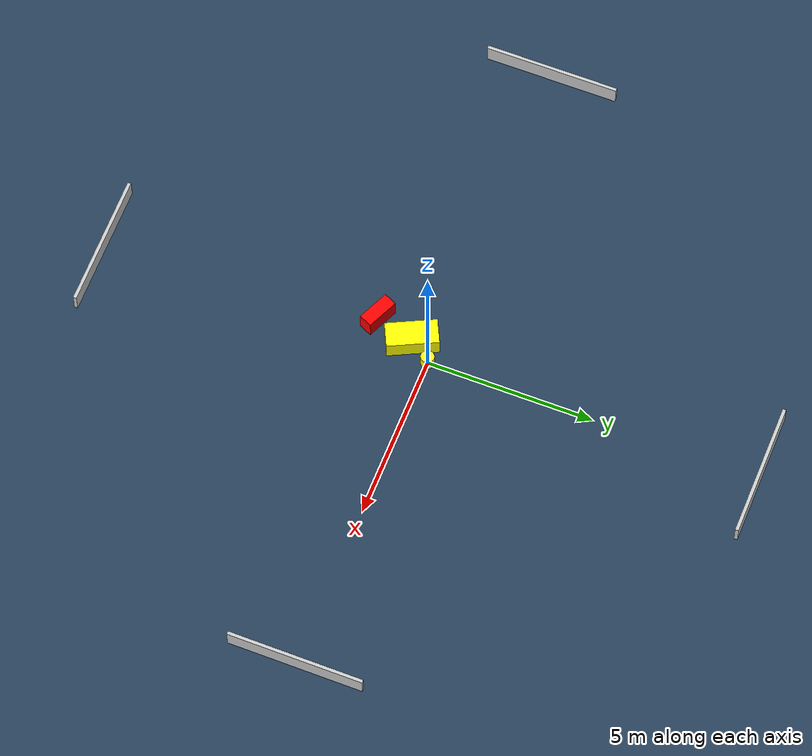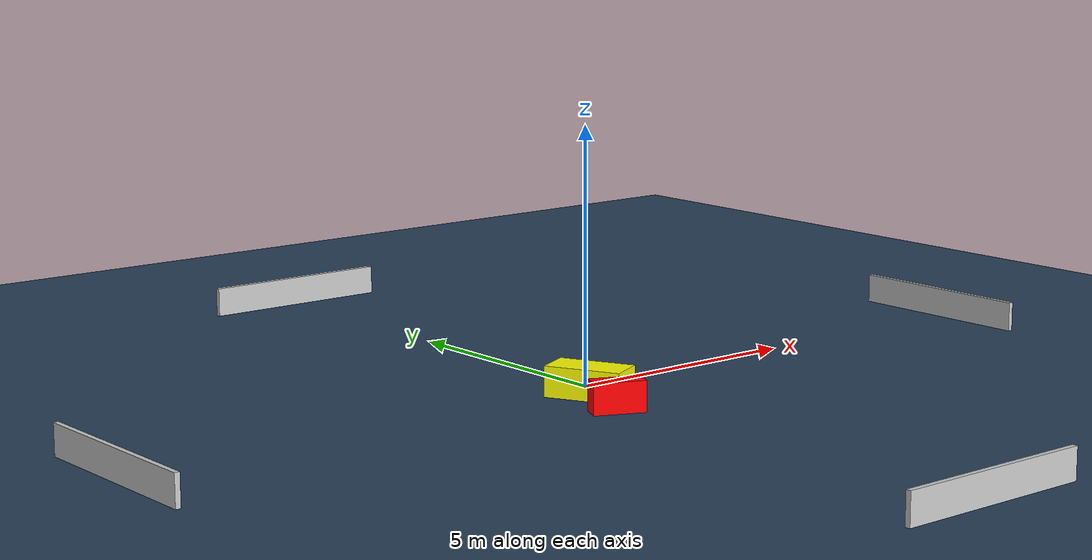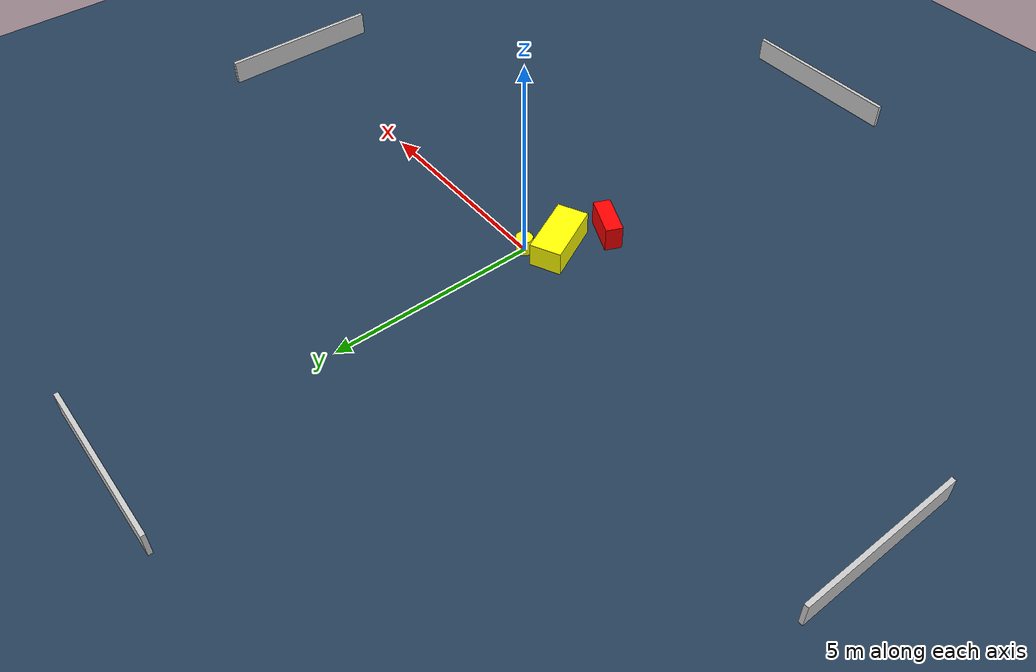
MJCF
<?xml version="1.0" ?>
<mujoco model="generated_environment">
  <option timestep="0.01" integrator="RK4" cone="elliptic"/>
  <default>
    <geom density="1"/>
  </default>
  <asset>
    <texture builtin="gradient" height="3072" name="skybox" rgb1="0.3 0.5 0.7" rgb2="0 0 0" type="skybox" width="512"/>
    <texture builtin="checker" height="300" name="groundplane" rgb1="0.2 0.3 0.4" rgb2="0.1 0.2 0.3" type="2d" width="300"/>
    <material name="groundplane" reflectance="0.2" texrepeat="5 5" texture="groundplane"/>
  </asset>
  <worldbody>
    <light dir="0 0 -1" directional="true" pos="0 0 1.5"/>
    <geom condim="3" friction="0.5 0.005 0.001" material="groundplane" name="floor" pos="0 0 0" size="0 0 0.05" type="plane"/>
    <body name="walls">
      <geom name="wall_1" condim="4" pos="-10.0 0.0 0.3" rgba="0.800000011920929 0.800000011920929 0.800000011920929 1.0" size="0.05 2.0 0.3" type="box"/>
      <geom name="wall_2" condim="4" pos="10.0 0.0 0.3" rgba="0.800000011920929 0.800000011920929 0.800000011920929 1.0" size="0.05 2.0 0.3" type="box"/>
      <geom name="wall_3" condim="4" pos="0.0 -10.0 0.3" rgba="0.800000011920929 0.800000011920929 0.800000011920929 1.0" size="2.0 0.05 0.3" type="box"/>
      <geom name="wall_4" condim="4" pos="0.0 10.0 0.3" rgba="0.800000011920929 0.800000011920929 0.800000011920929 1.0" size="2.0 0.05 0.3" type="box"/>
    </body>
    <body name="robot">
      <joint name="joint_x" type="slide" pos="0 0 0" axis="1 0 0"/>
      <joint name="joint_y" type="slide" pos="0 0 0" axis="0 1 0"/>
      <geom name="robot" type="cylinder" pos="0.0 0.0 0.2" size="0.2 0.2 0.0" mass="5.0" friction="1.0 0.005 0.0001" condim="4" rgba="1.0 1.0 0.0 1.0"/>
    </body>
    <body name="obstacle_1_movable">
      <geom name="obstacle_1_movable" condim="4" pos="-0.45143699046886954 -0.6516815482764315 0.3" euler="0 0 205.86267435454081" friction="0.0 0.005 0.001" rgba="1.0 1.0 0.0 1.0" size="0.3723900474764408 0.759876249597006 0.3" type="box" mass="0.1"/>
      <joint type="free"/>
    </body>
    <body name="obstacle_2_static">
      <geom name="obstacle_2_static" condim="4" pos="-0.7777849656723077 -1.818861962333366 0.3" euler="0 0 155.6901656139364" friction="0.0 0.005 0.001" rgba="1.0 0.0 0.0 1.0" size="0.5003862866716269 0.20400437698022184 0.3" type="box"/>
    </body>
  </worldbody>
  <actuator>
    <motor name="actuator_x" joint="joint_x" gear="1" ctrlrange="-1 1"/>
    <motor name="actuator_y" joint="joint_y" gear="1" ctrlrange="-1 1"/>
  </actuator>
</mujoco>
